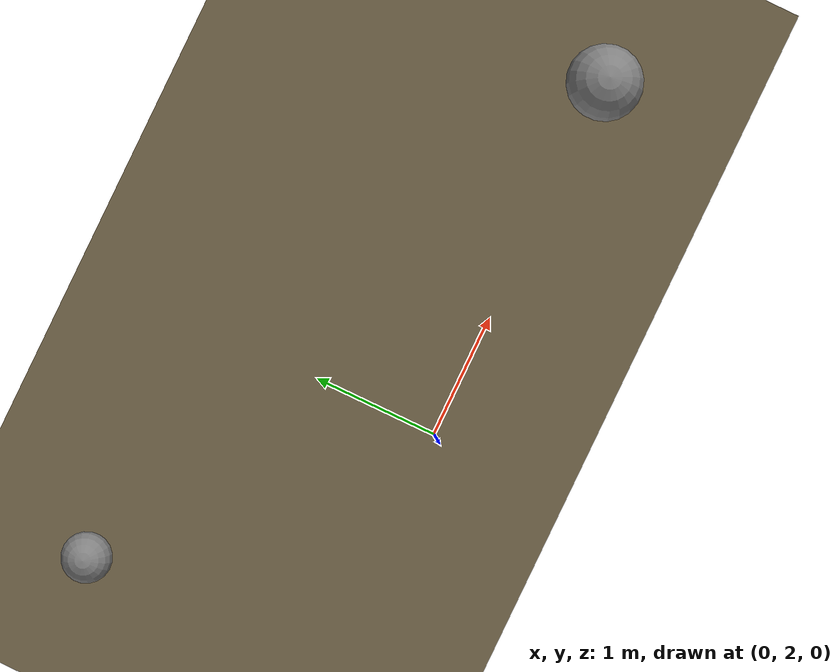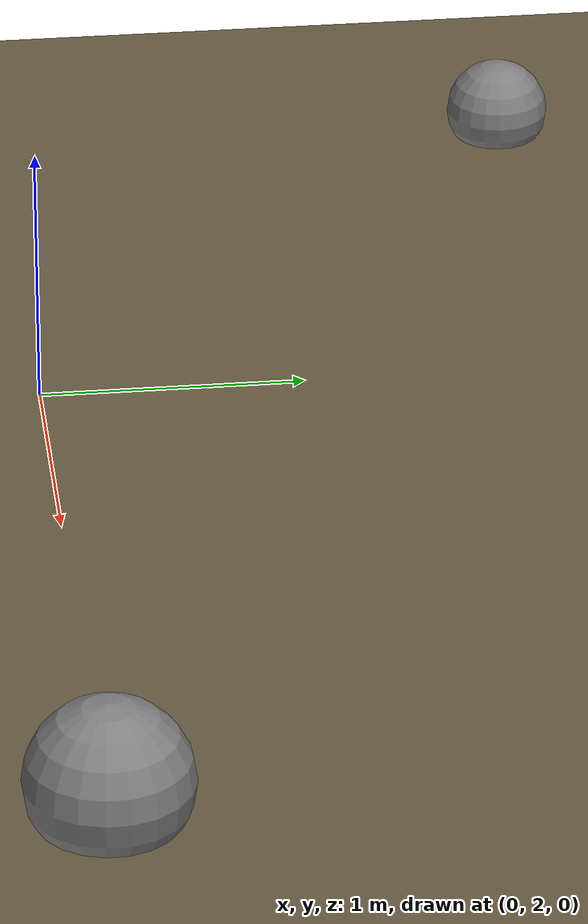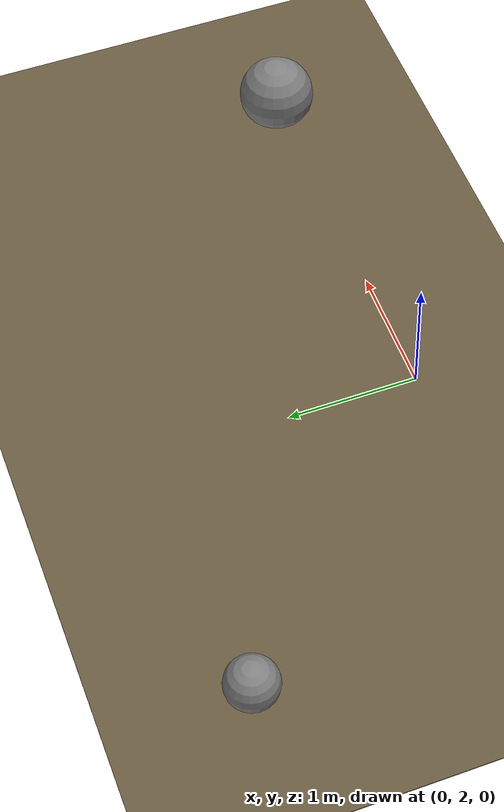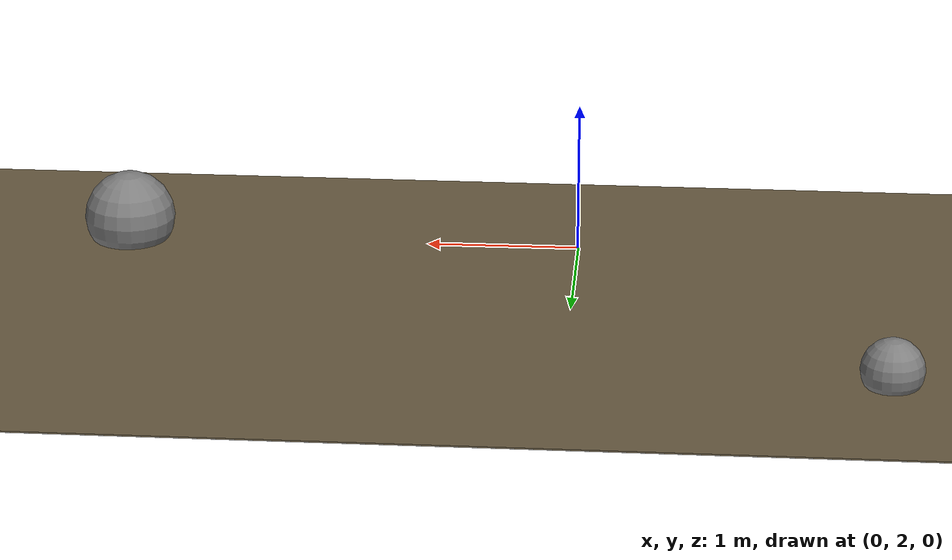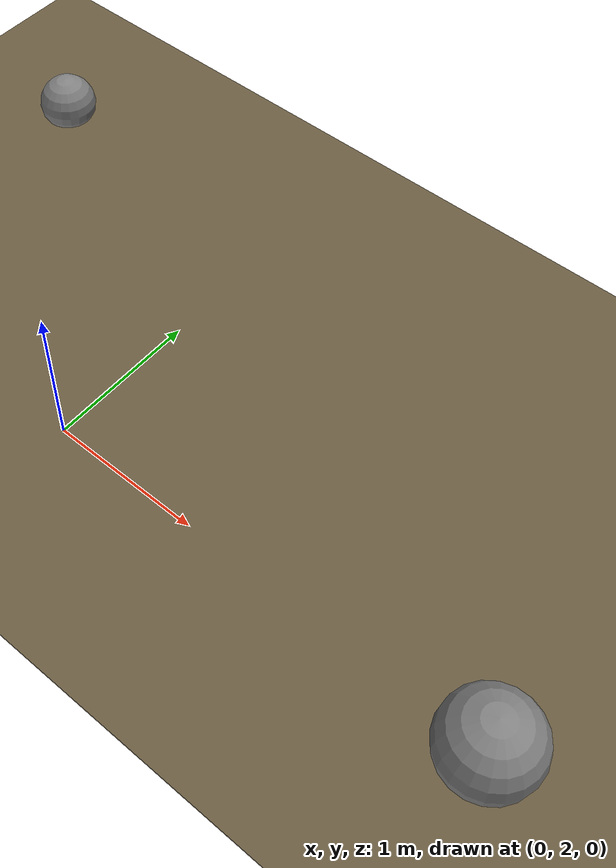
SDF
<?xml version="1.0" ?>
<sdf version="1.6">
  <world name="outdoor_rough">
    <include>
      <uri>model://ground_plane</uri>
    </include>
    <include>
      <uri>model://sun</uri>
    </include>

    <!-- Outdoor rough terrain: uneven surface, sparse features -->
    <!-- Heightmap for rough terrain -->
    <model name="rough_terrain">
      <static>true</static>
      <pose>0 0 0 0 0 0</pose>
      <link name="link">
        <collision name="collision">
          <geometry>
            <box><size>20 20 0.01</size></box>
          </geometry>
          <surface>
            <friction>
              <ode>
                <mu>1.5</mu>
                <mu2>1.5</mu2>
              </ode>
            </friction>
          </surface>
        </collision>
        <visual name="visual">
          <geometry>
            <box><size>20 20 0.01</size></box>
          </geometry>
          <material>
            <ambient>0.4 0.35 0.25 1</ambient>
          </material>
        </visual>
      </link>
    </model>

    <!-- Sparse obstacles (rocks, bushes) -->
    <model name="rock1">
      <static>true</static>
      <pose>3 2 0.15 0 0 0.5</pose>
      <link name="link">
        <collision name="collision">
          <geometry><sphere><radius>0.3</radius></sphere></geometry>
        </collision>
        <visual name="visual">
          <geometry><sphere><radius>0.3</radius></sphere></geometry>
          <material><ambient>0.5 0.5 0.5 1</ambient></material>
        </visual>
      </link>
    </model>

    <model name="rock2">
      <static>true</static>
      <pose>-2 4 0.1 0 0 1.2</pose>
      <link name="link">
        <collision name="collision">
          <geometry><sphere><radius>0.2</radius></sphere></geometry>
        </collision>
        <visual name="visual">
          <geometry><sphere><radius>0.2</radius></sphere></geometry>
          <material><ambient>0.5 0.5 0.5 1</ambient></material>
        </visual>
      </link>
    </model>

    <physics type="ode">
      <max_step_size>0.001</max_step_size>
      <real_time_factor>1</real_time_factor>
    </physics>
  </world>
</sdf>
